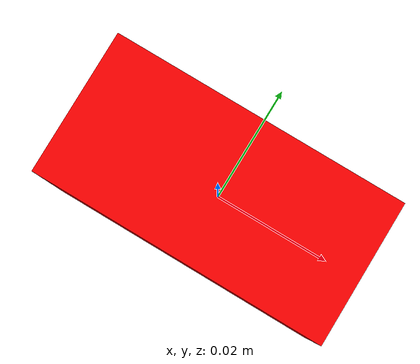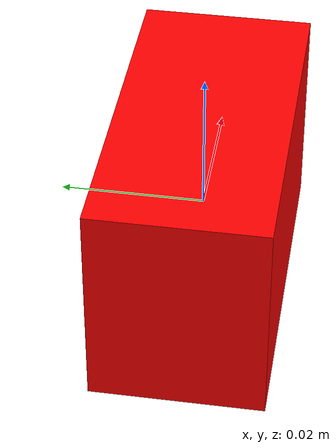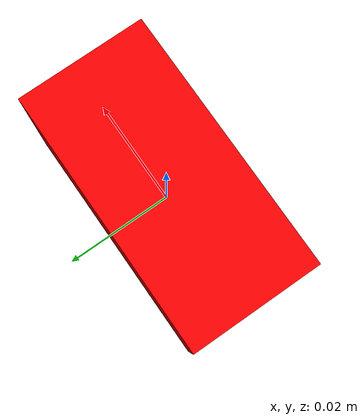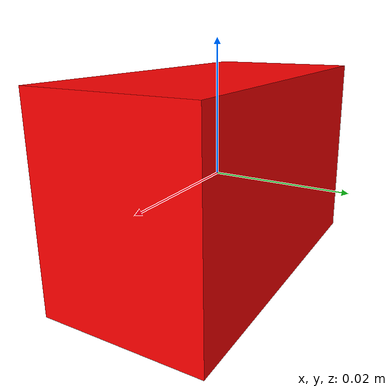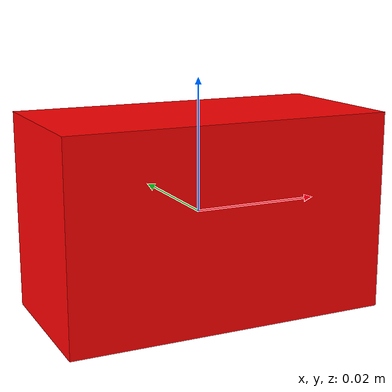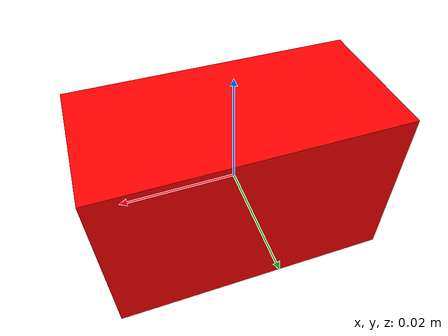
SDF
<?xml version='1.0'?>
<sdf version='1.7'>
  <model name='depth_camera_model'>
    <static>true</static>
    <link name='link'>
      <pose>0 0 0 0 0 1.5708</pose>

      <visual name='visual'>
        <geometry>
          <box>
            <size>0.024 0.049 0.030</size>
          </box>
        </geometry>
        <material>
          <ambient>1 0 0 1</ambient>
          <diffuse>1 0 0 1</diffuse>
          <specular>0.1 0.1 0.1 1</specular>
        </material>
      </visual>

      <collision name='collision'>
        <geometry>
          <box>
            <size>0.024 0.049 0.030</size>
          </box>
        </geometry>
      </collision>

      <sensor name='depth_camera_sensor' type='depth_camera'>
        <update_rate>1</update_rate>
        <topic>depth_camera</topic>
        <camera>
          <distortion>
            <k1>0.0</k1>
            <k2>0.0</k2>
            <k3>0.0</k3>
            <p1>0.0</p1>
            <p2>0.0</p2>
          </distortion>
        </camera>
      </sensor>
    </link>
  </model>
</sdf>
